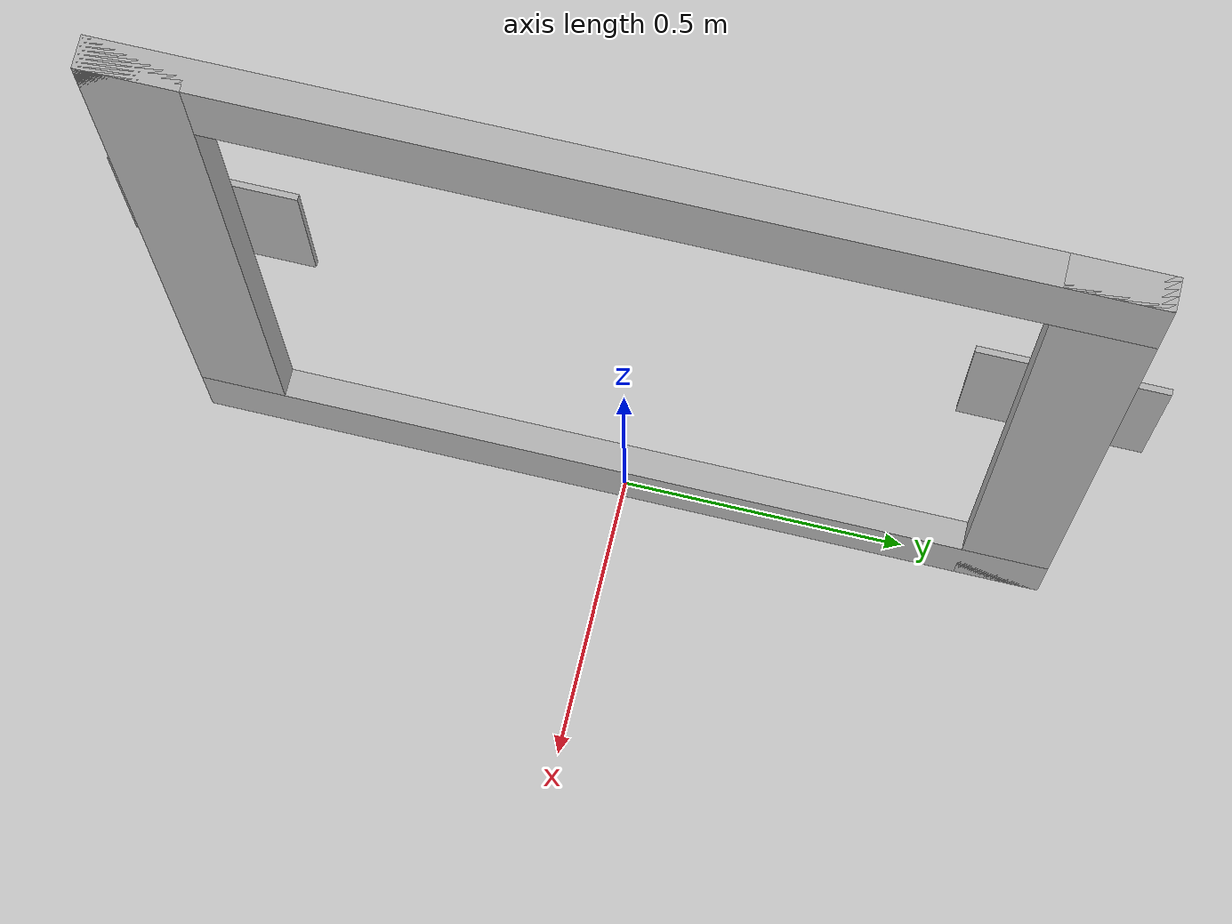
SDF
<?xml version="1.0" ?>
<sdf version="1.6">
  <model name="gate_01">
    <static>true</static>

    <!-- Frame -->
    <link name="bar_bottom">
      <pose>0 0 0.075 0 0 0</pose>
      <visual name="bottom">
        <geometry><box><size>0.05 1.5 0.15</size></box></geometry>
      </visual>
    </link>

    <link name="bar_top">
      <pose>0 0 1.425 0 0 0</pose>
      <visual name="top">
        <geometry><box><size>0.05 1.5 0.15</size></box></geometry>
      </visual>
    </link>

    <link name="bar_left">
      <pose>0 0.675 0.75 0 0 0</pose>
      <visual name="left">
        <geometry><box><size>0.05 0.15 1.5</size></box></geometry>
      </visual>
    </link>

    <link name="bar_right">
      <pose>0 -0.675 0.75 0 0 0</pose>
      <visual name="right">
        <geometry><box><size>0.05 0.15 1.5</size></box></geometry>
      </visual>
    </link>

    <!-- Tags -->
    <include>
      <uri>model://apriltag_36h11_02</uri>
      <name>tag0</name>
      <pose>-0.075 0.675 0.75 0 0 -1.5708</pose>
    </include>

    <include>
      <uri>model://apriltag_36h11_03</uri>
      <name>tag1</name>
      <pose>-0.075 -0.675 0.75 0 0 1.5708</pose>
    </include>

  </model>
</sdf>

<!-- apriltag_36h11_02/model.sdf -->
<sdf version='1.6'>
  <model name='apriltag_36h11_02'>
    <static>true</static>
    <link name='link'>
      <pose>0 0 0 0 0 0</pose>
      <visual name='visual'>
        <geometry>
          <box>
            <size>0.3 0.01 0.3</size>  <!-- width, depth, height -->
          </box>
        </geometry>
        <material>
          <script>
            <uri>model://apriltag_36h11_02/materials/scripts</uri>
            <uri>model://apriltag_36h11_02/materials/textures</uri>
            <name>apriltag_36h11_02</name>
          </script>
        </material>
      </visual>
      <collision name="collision">
        <geometry>
          <box>
            <size>0.3 0.01 0.3</size>
          </box>
        </geometry>
      </collision>
    </link>
  </model>
</sdf>

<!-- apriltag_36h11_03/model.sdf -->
<sdf version='1.6'>
  <model name='apriltag_36h11_03'>
    <static>true</static>
    <link name='link'>
      <pose>0 0 0 0 0 0</pose>
      <visual name='visual'>
        <geometry>
          <box>
            <size>0.3 0.01 0.3</size>  <!-- width, depth, height -->
          </box>
        </geometry>
        <material>
          <script>
            <uri>model://apriltag_36h11_03/materials/scripts</uri>
            <uri>model://apriltag_36h11_03/materials/textures</uri>
            <name>apriltag_36h11_03</name>
          </script>
        </material>
      </visual>
      <collision name="collision">
        <geometry>
          <box>
            <size>0.3 0.01 0.3</size>
          </box>
        </geometry>
      </collision>
    </link>
  </model>
</sdf>
